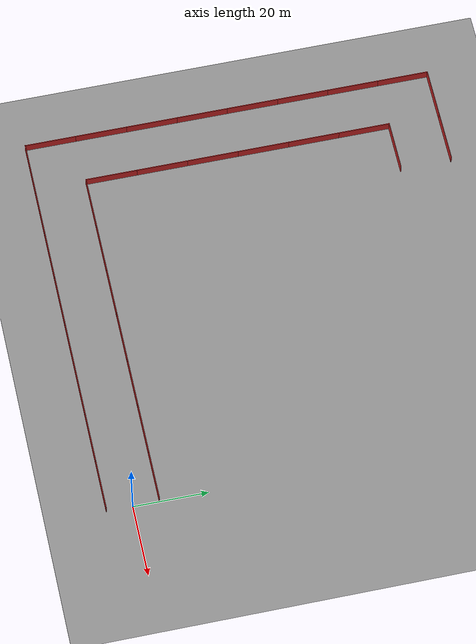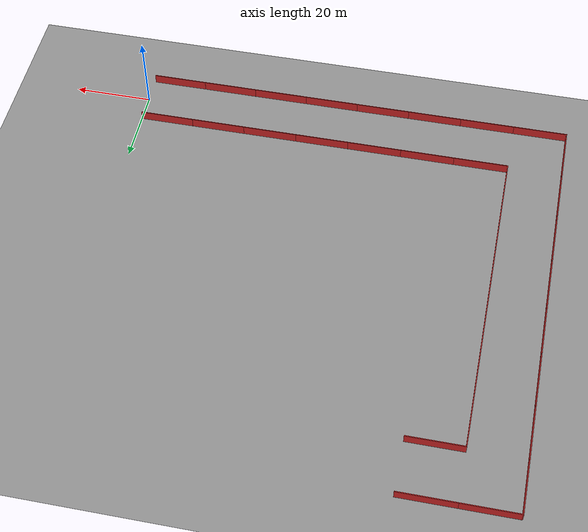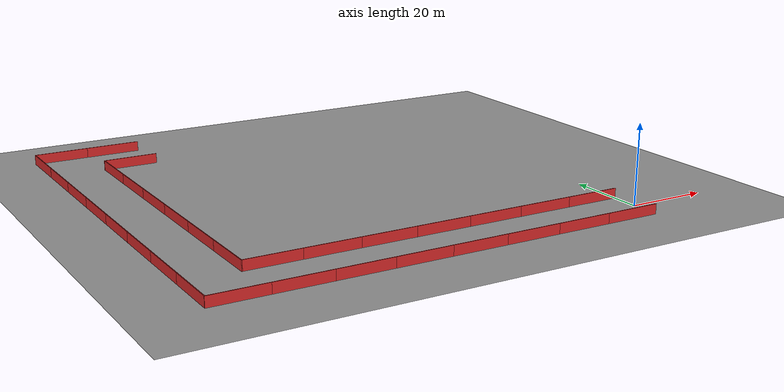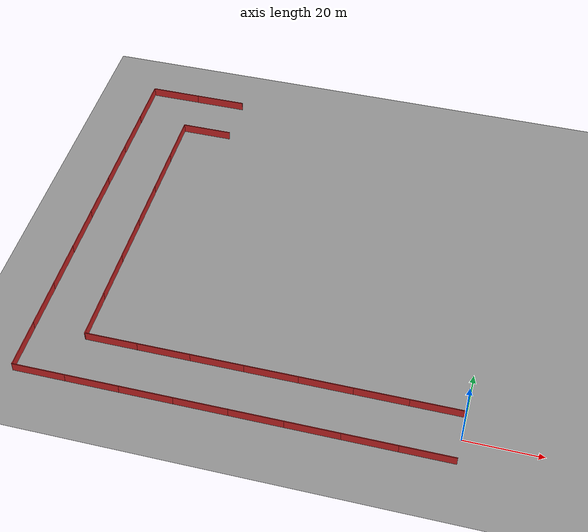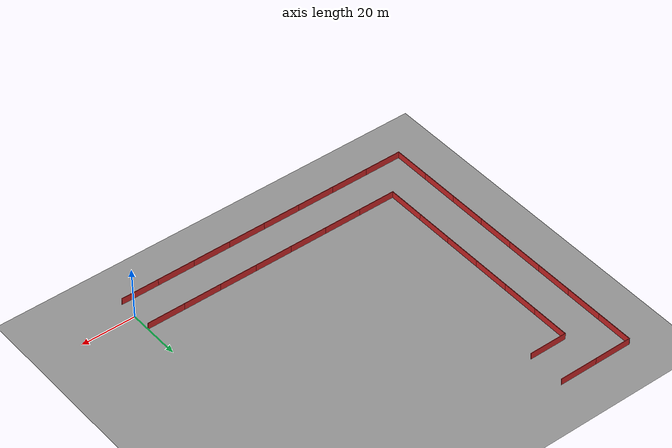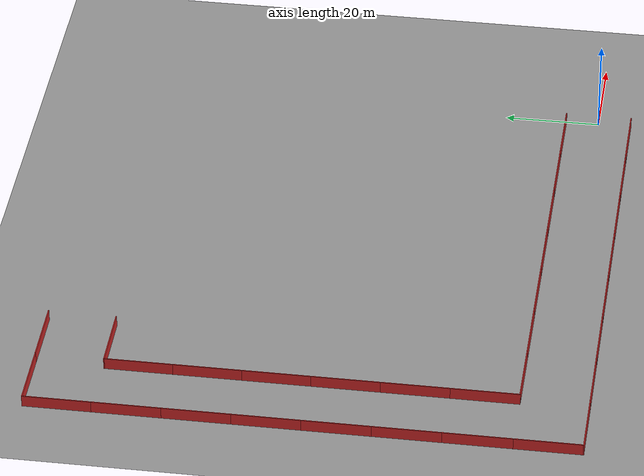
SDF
<sdf version="1.4">
 <world name="default">
  <model name="staright_28m_11">
   <link name="Wall_26">
    <collision name="Wall_26_Collision">
     <geometry><box><size>14 0.2 2.5</size></box></geometry>
     <pose>0 0 1.25 0 -0 0</pose>
    </collision>
    <visual name="Wall_26_Visual">
     <pose>0 0 1.25 0 -0 0</pose>
     <geometry><box><size>14 0.2 2.5</size></box></geometry>
     <material>
      <script>
       <uri>model://materials/scripts</uri>
       <uri>model://materials/textures</uri>
       <name>vrc/red_wall</name>
      </script>
     </material>
    </visual>
    <velocity_decay><linear>0</linear><angular>0</angular></velocity_decay>
    <pose>-7 -7 0 0 -0 0</pose>
   </link>
   <link name="Wall_28">
    <collision name="Wall_28_Collision">
     <geometry><box><size>14 0.2 2.5</size></box></geometry>
     <pose>0 0 1.25 0 -0 0</pose>
    </collision>
    <visual name="Wall_28_Visual">
     <pose>0 0 1.25 0 -0 0</pose>
     <geometry><box><size>14 0.2 2.5</size></box></geometry>
     <material>
      <script>
       <uri>model://materials/scripts</uri>
       <uri>model://materials/textures</uri>
       <name>vrc/red_wall</name>
      </script>
     </material>
    </visual>
    <velocity_decay><linear>0</linear><angular>0</angular></velocity_decay>
    <pose>-7 7 0 0 -0 0</pose>
   </link>
   <static>1</static>
   <link name="Wall_27">
    <collision name="Wall_26_Collision">
     <geometry><box><size>14 0.2 2.5</size></box></geometry>
     <pose>0 0 1.25 0 -0 0</pose>
    </collision>
    <visual name="Wall_26_Visual">
     <pose>0 0 1.25 0 -0 0</pose>
     <geometry><box><size>14 0.2 2.5</size></box></geometry>
     <material>
      <script>
       <uri>model://materials/scripts</uri>
       <uri>model://materials/textures</uri>
       <name>vrc/red_wall</name>
      </script>
     </material>
    </visual>
    <velocity_decay><linear>0</linear><angular>0</angular></velocity_decay>
    <pose>7 -7 0 0 -0 0</pose>
   </link>
   <link name="Wall_29">
    <collision name="Wall_28_Collision">
     <geometry><box><size>14 0.2 2.5</size></box></geometry>
     <pose>0 0 1.25 0 -0 0</pose>
    </collision>
    <visual name="Wall_28_Visual">
     <pose>0 0 1.25 0 -0 0</pose>
     <geometry><box><size>14 0.2 2.5</size></box></geometry>
     <material>
      <script>
       <uri>model://materials/scripts</uri>
       <uri>model://materials/textures</uri>
       <name>vrc/red_wall</name>
      </script>
     </material>
    </visual>
    <velocity_decay><linear>0</linear><angular>0</angular></velocity_decay>
    <pose>7 7 0 0 -0 0</pose>
   </link>
   <static>1</static>
   <pose>-14 0 0 0 -0 0</pose>
  </model>
  <model name="staright_28m_12">
   <link name="Wall_26">
    <collision name="Wall_26_Collision">
     <geometry><box><size>14 0.2 2.5</size></box></geometry>
     <pose>0 0 1.25 0 -0 0</pose>
    </collision>
    <visual name="Wall_26_Visual">
     <pose>0 0 1.25 0 -0 0</pose>
     <geometry><box><size>14 0.2 2.5</size></box></geometry>
     <material>
      <script>
       <uri>model://materials/scripts</uri>
       <uri>model://materials/textures</uri>
       <name>vrc/red_wall</name>
      </script>
     </material>
    </visual>
    <velocity_decay><linear>0</linear><angular>0</angular></velocity_decay>
    <pose>-7 -7 0 0 -0 0</pose>
   </link>
   <link name="Wall_28">
    <collision name="Wall_28_Collision">
     <geometry><box><size>14 0.2 2.5</size></box></geometry>
     <pose>0 0 1.25 0 -0 0</pose>
    </collision>
    <visual name="Wall_28_Visual">
     <pose>0 0 1.25 0 -0 0</pose>
     <geometry><box><size>14 0.2 2.5</size></box></geometry>
     <material>
      <script>
       <uri>model://materials/scripts</uri>
       <uri>model://materials/textures</uri>
       <name>vrc/red_wall</name>
      </script>
     </material>
    </visual>
    <velocity_decay><linear>0</linear><angular>0</angular></velocity_decay>
    <pose>-7 7 0 0 -0 0</pose>
   </link>
   <static>1</static>
   <link name="Wall_27">
    <collision name="Wall_26_Collision">
     <geometry><box><size>14 0.2 2.5</size></box></geometry>
     <pose>0 0 1.25 0 -0 0</pose>
    </collision>
    <visual name="Wall_26_Visual">
     <pose>0 0 1.25 0 -0 0</pose>
     <geometry><box><size>14 0.2 2.5</size></box></geometry>
     <material>
      <script>
       <uri>model://materials/scripts</uri>
       <uri>model://materials/textures</uri>
       <name>vrc/red_wall</name>
      </script>
     </material>
    </visual>
    <velocity_decay><linear>0</linear><angular>0</angular></velocity_decay>
    <pose>7 -7 0 0 -0 0</pose>
   </link>
   <link name="Wall_29">
    <collision name="Wall_28_Collision">
     <geometry><box><size>14 0.2 2.5</size></box></geometry>
     <pose>0 0 1.25 0 -0 0</pose>
    </collision>
    <visual name="Wall_28_Visual">
     <pose>0 0 1.25 0 -0 0</pose>
     <geometry><box><size>14 0.2 2.5</size></box></geometry>
     <material>
      <script>
       <uri>model://materials/scripts</uri>
       <uri>model://materials/textures</uri>
       <name>vrc/red_wall</name>
      </script>
     </material>
    </visual>
    <velocity_decay><linear>0</linear><angular>0</angular></velocity_decay>
    <pose>7 7 0 0 -0 0</pose>
   </link>
   <static>1</static>
   <pose>-42 0 0 0 -0 0</pose>
  </model>
  <model name="staright_28m_13">
   <link name="Wall_26">
    <collision name="Wall_26_Collision">
     <geometry><box><size>14 0.2 2.5</size></box></geometry>
     <pose>0 0 1.25 0 -0 0</pose>
    </collision>
    <visual name="Wall_26_Visual">
     <pose>0 0 1.25 0 -0 0</pose>
     <geometry><box><size>14 0.2 2.5</size></box></geometry>
     <material>
      <script>
       <uri>model://materials/scripts</uri>
       <uri>model://materials/textures</uri>
       <name>vrc/red_wall</name>
      </script>
     </material>
    </visual>
    <velocity_decay><linear>0</linear><angular>0</angular></velocity_decay>
    <pose>-7 -7 0 0 -0 0</pose>
   </link>
   <link name="Wall_28">
    <collision name="Wall_28_Collision">
     <geometry><box><size>14 0.2 2.5</size></box></geometry>
     <pose>0 0 1.25 0 -0 0</pose>
    </collision>
    <visual name="Wall_28_Visual">
     <pose>0 0 1.25 0 -0 0</pose>
     <geometry><box><size>14 0.2 2.5</size></box></geometry>
     <material>
      <script>
       <uri>model://materials/scripts</uri>
       <uri>model://materials/textures</uri>
       <name>vrc/red_wall</name>
      </script>
     </material>
    </visual>
    <velocity_decay><linear>0</linear><angular>0</angular></velocity_decay>
    <pose>-7 7 0 0 -0 0</pose>
   </link>
   <static>1</static>
   <link name="Wall_27">
    <collision name="Wall_26_Collision">
     <geometry><box><size>14 0.2 2.5</size></box></geometry>
     <pose>0 0 1.25 0 -0 0</pose>
    </collision>
    <visual name="Wall_26_Visual">
     <pose>0 0 1.25 0 -0 0</pose>
     <geometry><box><size>14 0.2 2.5</size></box></geometry>
     <material>
      <script>
       <uri>model://materials/scripts</uri>
       <uri>model://materials/textures</uri>
       <name>vrc/red_wall</name>
      </script>
     </material>
    </visual>
    <velocity_decay><linear>0</linear><angular>0</angular></velocity_decay>
    <pose>7 -7 0 0 -0 0</pose>
   </link>
   <link name="Wall_29">
    <collision name="Wall_28_Collision">
     <geometry><box><size>14 0.2 2.5</size></box></geometry>
     <pose>0 0 1.25 0 -0 0</pose>
    </collision>
    <visual name="Wall_28_Visual">
     <pose>0 0 1.25 0 -0 0</pose>
     <geometry><box><size>14 0.2 2.5</size></box></geometry>
     <material>
      <script>
       <uri>model://materials/scripts</uri>
       <uri>model://materials/textures</uri>
       <name>vrc/red_wall</name>
      </script>
     </material>
    </visual>
    <velocity_decay><linear>0</linear><angular>0</angular></velocity_decay>
    <pose>7 7 0 0 -0 0</pose>
   </link>
   <static>1</static>
   <pose>-70 0 0 0 -0 0</pose>
  </model>
  <model name="ground_plane_0">
   <static>1</static>
   <link name="link">
    <collision name="collision">
     <geometry><plane><normal>0 0 1</normal><size>100 100</size></plane></geometry>
     <surface><friction><ode><mu>100</mu><mu2>50</mu2></ode></friction></surface>
    </collision>
    <visual name="visual">
     <cast_shadows>0</cast_shadows>
     <geometry><plane><normal>0 0 1</normal><size>100 100</size></plane></geometry>
     <material>
      <script><uri>file://media/materials/scripts/gazebo.material</uri><name>Gazebo/Grey</name></script>
     </material>
    </visual>
    <velocity_decay><linear>0</linear><angular>0</angular></velocity_decay>
   </link>
   <pose>1 2 0 0 -0 0</pose>
  </model>
  <model name="right_angle_turn_4">
   <link name="Wall_0">
    <collision name="Wall_0_Collision">
     <geometry><box><size>14.1 0.2 2.5</size></box></geometry>
     <pose>0 0 1.25 0 -0 0</pose>
    </collision>
    <visual name="Wall_0_Visual">
     <pose>0 0 1.25 0 -0 0</pose>
     <geometry><box><size>14.1 0.2 2.5</size></box></geometry>
     <material>
      <script>
       <uri>model://materials/scripts</uri>
       <uri>model://materials/textures</uri>
       <name>vrc/red_wall_x4</name>
      </script>
     </material>
    </visual>
    <velocity_decay><linear>0</linear><angular>0</angular></velocity_decay>
    <pose>0 -6.95 0 0 0 -1.5708</pose>
   </link>
   <link name="Wall_10">
    <collision name="Wall_10_Collision">
     <geometry><box><size>13.8 0.2 2.5</size></box></geometry>
     <pose>0 0 1.25 0 -0 0</pose>
    </collision>
    <visual name="Wall_10_Visual">
     <pose>0 0 1.25 0 -0 0</pose>
     <geometry><box><size>13.8 0.2 2.5</size></box></geometry>
     <material>
      <script>
       <uri>model://materials/scripts</uri>
       <uri>model://materials/textures</uri>
       <name>vrc/red_wall_x4</name>
      </script>
     </material>
    </visual>
    <velocity_decay><linear>0</linear><angular>0</angular></velocity_decay>
    <pose>14 7 0 0 0 -1.5708</pose>
   </link>
   <link name="Wall_2">
    <collision name="Wall_2_Collision">
     <geometry><box><size>13.9 0.2 2.5</size></box></geometry>
     <pose>0 0 1.25 0 -0 0</pose>
    </collision>
    <visual name="Wall_2_Visual">
     <pose>0 0 1.25 0 -0 0</pose>
     <geometry><box><size>13.9 0.2 2.5</size></box></geometry>
     <material>
      <script>
       <uri>model://materials/scripts</uri>
       <uri>model://materials/textures</uri>
       <name>vrc/red_wall_x4</name>
      </script>
     </material>
    </visual>
    <velocity_decay><linear>0</linear><angular>0</angular></velocity_decay>
    <pose>-7.05 0 0 0 -0 3.14159</pose>
   </link>
   <link name="Wall_4">
    <collision name="Wall_4_Collision">
     <geometry><box><size>14.1 0.2 2.5</size></box></geometry>
     <pose>0 0 1.25 0 -0 0</pose>
    </collision>
    <visual name="Wall_4_Visual">
     <pose>0 0 1.25 0 -0 0</pose>
     <geometry><box><size>14.1 0.2 2.5</size></box></geometry>
     <material>
      <script>
       <uri>model://materials/scripts</uri>
       <uri>model://materials/textures</uri>
       <name>vrc/red_wall_x4</name>
      </script>
     </material>
    </visual>
    <velocity_decay><linear>0</linear><angular>0</angular></velocity_decay>
    <pose>14 -6.95 0 0 -0 1.5708</pose>
   </link>
   <link name="Wall_6">
    <collision name="Wall_6_Collision">
     <geometry><box><size>14.1 0.2 2.5</size></box></geometry>
     <pose>0 0 1.25 0 -0 0</pose>
    </collision>
    <visual name="Wall_6_Visual">
     <pose>0 0 1.25 0 -0 0</pose>
     <geometry><box><size>14.1 0.2 2.5</size></box></geometry>
     <material>
      <script>
       <uri>model://materials/scripts</uri>
       <uri>model://materials/textures</uri>
       <name>vrc/red_wall_x4</name>
      </script>
     </material>
    </visual>
    <velocity_decay><linear>0</linear><angular>0</angular></velocity_decay>
    <pose>-6.95 14 0 0 -0 0</pose>
   </link>
   <link name="Wall_8">
    <collision name="Wall_8_Collision">
     <geometry><box><size>14 0.2 2.5</size></box></geometry>
     <pose>0 0 1.25 0 -0 0</pose>
    </collision>
    <visual name="Wall_8_Visual">
     <pose>0 0 1.25 0 -0 0</pose>
     <geometry><box><size>14 0.2 2.5</size></box></geometry>
     <material>
      <script>
       <uri>model://materials/scripts</uri>
       <uri>model://materials/textures</uri>
       <name>vrc/red_wall_x4</name>
      </script>
     </material>
    </visual>
    <velocity_decay><linear>0</linear><angular>0</angular></velocity_decay>
    <pose>7.1 14 0 0 -0 0</pose>
   </link>
   <static>1</static>
   <pose>-98 7 0 0 -0 3.14159</pose>
  </model>
  <model name="right_angle_turn_5">
   <link name="Wall_0">
    <collision name="Wall_0_Collision">
     <geometry><box><size>14.1 0.2 2.5</size></box></geometry>
     <pose>0 0 1.25 0 -0 0</pose>
    </collision>
    <visual name="Wall_0_Visual">
     <pose>0 0 1.25 0 -0 0</pose>
     <geometry><box><size>14.1 0.2 2.5</size></box></geometry>
     <material>
      <script>
       <uri>model://materials/scripts</uri>
       <uri>model://materials/textures</uri>
       <name>vrc/red_wall_x4</name>
      </script>
     </material>
    </visual>
    <velocity_decay><linear>0</linear><angular>0</angular></velocity_decay>
    <pose>0 -6.95 0 0 0 -1.5708</pose>
   </link>
   <link name="Wall_10">
    <collision name="Wall_10_Collision">
     <geometry><box><size>13.8 0.2 2.5</size></box></geometry>
     <pose>0 0 1.25 0 -0 0</pose>
    </collision>
    <visual name="Wall_10_Visual">
     <pose>0 0 1.25 0 -0 0</pose>
     <geometry><box><size>13.8 0.2 2.5</size></box></geometry>
     <material>
      <script>
       <uri>model://materials/scripts</uri>
       <uri>model://materials/textures</uri>
       <name>vrc/red_wall_x4</name>
      </script>
     </material>
    </visual>
    <velocity_decay><linear>0</linear><angular>0</angular></velocity_decay>
    <pose>14 7 0 0 0 -1.5708</pose>
   </link>
   <link name="Wall_2">
    <collision name="Wall_2_Collision">
     <geometry><box><size>13.9 0.2 2.5</size></box></geometry>
     <pose>0 0 1.25 0 -0 0</pose>
    </collision>
    <visual name="Wall_2_Visual">
     <pose>0 0 1.25 0 -0 0</pose>
     <geometry><box><size>13.9 0.2 2.5</size></box></geometry>
     <material>
      <script>
       <uri>model://materials/scripts</uri>
       <uri>model://materials/textures</uri>
       <name>vrc/red_wall_x4</name>
      </script>
     </material>
    </visual>
    <velocity_decay><linear>0</linear><angular>0</angular></velocity_decay>
    <pose>-7.05 0 0 0 -0 3.14159</pose>
   </link>
   <link name="Wall_4">
    <collision name="Wall_4_Collision">
     <geometry><box><size>14.1 0.2 2.5</size></box></geometry>
     <pose>0 0 1.25 0 -0 0</pose>
    </collision>
    <visual name="Wall_4_Visual">
     <pose>0 0 1.25 0 -0 0</pose>
     <geometry><box><size>14.1 0.2 2.5</size></box></geometry>
     <material>
      <script>
       <uri>model://materials/scripts</uri>
       <uri>model://materials/textures</uri>
       <name>vrc/red_wall_x4</name>
      </script>
     </material>
    </visual>
    <velocity_decay><linear>0</linear><angular>0</angular></velocity_decay>
    <pose>14 -6.95 0 0 -0 1.5708</pose>
   </link>
   <link name="Wall_6">
    <collision name="Wall_6_Collision">
     <geometry><box><size>14.1 0.2 2.5</size></box></geometry>
     <pose>0 0 1.25 0 -0 0</pose>
    </collision>
    <visual name="Wall_6_Visual">
     <pose>0 0 1.25 0 -0 0</pose>
     <geometry><box><size>14.1 0.2 2.5</size></box></geometry>
     <material>
      <script>
       <uri>model://materials/scripts</uri>
       <uri>model://materials/textures</uri>
       <name>vrc/red_wall_x4</name>
      </script>
     </material>
    </visual>
    <velocity_decay><linear>0</linear><angular>0</angular></velocity_decay>
    <pose>-6.95 14 0 0 -0 0</pose>
   </link>
   <link name="Wall_8">
    <collision name="Wall_8_Collision">
     <geometry><box><size>14 0.2 2.5</size></box></geometry>
     <pose>0 0 1.25 0 -0 0</pose>
    </collision>
    <visual name="Wall_8_Visual">
     <pose>0 0 1.25 0 -0 0</pose>
     <geometry><box><size>14 0.2 2.5</size></box></geometry>
     <material>
      <script>
       <uri>model://materials/scripts</uri>
       <uri>model://materials/textures</uri>
       <name>vrc/red_wall_x4</name>
      </script>
     </material>
    </visual>
    <velocity_decay><linear>0</linear><angular>0</angular></velocity_decay>
    <pose>7.1 14 0 0 -0 0</pose>
   </link>
   <static>1</static>
   <pose>-98 91 0 0 -0 1.57079</pose>
  </model>
  <model name="staright_28m_16">
   <link name="Wall_26">
    <collision name="Wall_26_Collision">
     <geometry><box><size>14 0.2 2.5</size></box></geometry>
     <pose>0 0 1.25 0 -0 0</pose>
    </collision>
    <visual name="Wall_26_Visual">
     <pose>0 0 1.25 0 -0 0</pose>
     <geometry><box><size>14 0.2 2.5</size></box></geometry>
     <material>
      <script>
       <uri>model://materials/scripts</uri>
       <uri>model://materials/textures</uri>
       <name>vrc/red_wall</name>
      </script>
     </material>
    </visual>
    <velocity_decay><linear>0</linear><angular>0</angular></velocity_decay>
    <pose>-7 -7 0 0 -0 0</pose>
   </link>
   <link name="Wall_28">
    <collision name="Wall_28_Collision">
     <geometry><box><size>14 0.2 2.5</size></box></geometry>
     <pose>0 0 1.25 0 -0 0</pose>
    </collision>
    <visual name="Wall_28_Visual">
     <pose>0 0 1.25 0 -0 0</pose>
     <geometry><box><size>14 0.2 2.5</size></box></geometry>
     <material>
      <script>
       <uri>model://materials/scripts</uri>
       <uri>model://materials/textures</uri>
       <name>vrc/red_wall</name>
      </script>
     </material>
    </visual>
    <velocity_decay><linear>0</linear><angular>0</angular></velocity_decay>
    <pose>-7 7 0 0 -0 0</pose>
   </link>
   <static>1</static>
   <link name="Wall_27">
    <collision name="Wall_26_Collision">
     <geometry><box><size>14 0.2 2.5</size></box></geometry>
     <pose>0 0 1.25 0 -0 0</pose>
    </collision>
    <visual name="Wall_26_Visual">
     <pose>0 0 1.25 0 -0 0</pose>
     <geometry><box><size>14 0.2 2.5</size></box></geometry>
     <material>
      <script>
       <uri>model://materials/scripts</uri>
       <uri>model://materials/textures</uri>
       <name>vrc/red_wall</name>
      </script>
     </material>
    </visual>
    <velocity_decay><linear>0</linear><angular>0</angular></velocity_decay>
    <pose>7 -7 0 0 -0 0</pose>
   </link>
   <link name="Wall_29">
    <collision name="Wall_28_Collision">
     <geometry><box><size>14 0.2 2.5</size></box></geometry>
     <pose>0 0 1.25 0 -0 0</pose>
    </collision>
    <visual name="Wall_28_Visual">
     <pose>0 0 1.25 0 -0 0</pose>
     <geometry><box><size>14 0.2 2.5</size></box></geometry>
     <material>
      <script>
       <uri>model://materials/scripts</uri>
       <uri>model://materials/textures</uri>
       <name>vrc/red_wall</name>
      </script>
     </material>
    </visual>
    <velocity_decay><linear>0</linear><angular>0</angular></velocity_decay>
    <pose>7 7 0 0 -0 0</pose>
   </link>
   <static>1</static>
   <pose>-105 35 0 0 0 -1.5708</pose>
  </model>
  <model name="staright_28m_17">
   <link name="Wall_26">
    <collision name="Wall_26_Collision">
     <geometry><box><size>14 0.2 2.5</size></box></geometry>
     <pose>0 0 1.25 0 -0 0</pose>
    </collision>
    <visual name="Wall_26_Visual">
     <pose>0 0 1.25 0 -0 0</pose>
     <geometry><box><size>14 0.2 2.5</size></box></geometry>
     <material>
      <script>
       <uri>model://materials/scripts</uri>
       <uri>model://materials/textures</uri>
       <name>vrc/red_wall</name>
      </script>
     </material>
    </visual>
    <velocity_decay><linear>0</linear><angular>0</angular></velocity_decay>
    <pose>-7 -7 0 0 -0 0</pose>
   </link>
   <link name="Wall_28">
    <collision name="Wall_28_Collision">
     <geometry><box><size>14 0.2 2.5</size></box></geometry>
     <pose>0 0 1.25 0 -0 0</pose>
    </collision>
    <visual name="Wall_28_Visual">
     <pose>0 0 1.25 0 -0 0</pose>
     <geometry><box><size>14 0.2 2.5</size></box></geometry>
     <material>
      <script>
       <uri>model://materials/scripts</uri>
       <uri>model://materials/textures</uri>
       <name>vrc/red_wall</name>
      </script>
     </material>
    </visual>
    <velocity_decay><linear>0</linear><angular>0</angular></velocity_decay>
    <pose>-7 7 0 0 -0 0</pose>
   </link>
   <static>1</static>
   <link name="Wall_27">
    <collision name="Wall_26_Collision">
     <geometry><box><size>14 0.2 2.5</size></box></geometry>
     <pose>0 0 1.25 0 -0 0</pose>
    </collision>
    <visual name="Wall_26_Visual">
     <pose>0 0 1.25 0 -0 0</pose>
     <geometry><box><size>14 0.2 2.5</size></box></geometry>
     <material>
      <script>
       <uri>model://materials/scripts</uri>
       <uri>model://materials/textures</uri>
       <name>vrc/red_wall</name>
      </script>
     </material>
    </visual>
    <velocity_decay><linear>0</linear><angular>0</angular></velocity_decay>
    <pose>7 -7 0 0 -0 0</pose>
   </link>
   <link name="Wall_29">
    <collision name="Wall_28_Collision">
     <geometry><box><size>14 0.2 2.5</size></box></geometry>
     <pose>0 0 1.25 0 -0 0</pose>
    </collision>
    <visual name="Wall_28_Visual">
     <pose>0 0 1.25 0 -0 0</pose>
     <geometry><box><size>14 0.2 2.5</size></box></geometry>
     <material>
      <script>
       <uri>model://materials/scripts</uri>
       <uri>model://materials/textures</uri>
       <name>vrc/red_wall</name>
      </script>
     </material>
    </visual>
    <velocity_decay><linear>0</linear><angular>0</angular></velocity_decay>
    <pose>7 7 0 0 -0 0</pose>
   </link>
   <static>1</static>
   <pose>-105 63 0 0 0 -1.5708</pose>
  </model>
  <model name="ground_plane">
   <static>1</static>
   <link name="link">
    <collision name="collision">
     <geometry><plane><normal>0 0 1</normal><size>100 100</size></plane></geometry>
     <surface><friction><ode><mu>100</mu><mu2>50</mu2></ode></friction></surface>
    </collision>
    <visual name="visual">
     <cast_shadows>0</cast_shadows>
     <geometry><plane><normal>0 0 1</normal><size>100 100</size></plane></geometry>
     <material>
      <script><uri>file://media/materials/scripts/gazebo.material</uri><name>Gazebo/Grey</name></script>
     </material>
    </visual>
    <velocity_decay><linear>0</linear><angular>0</angular></velocity_decay>
   </link>
   <pose>-99 2 0 0 -0 0</pose>
  </model>
 </world>
</sdf>
